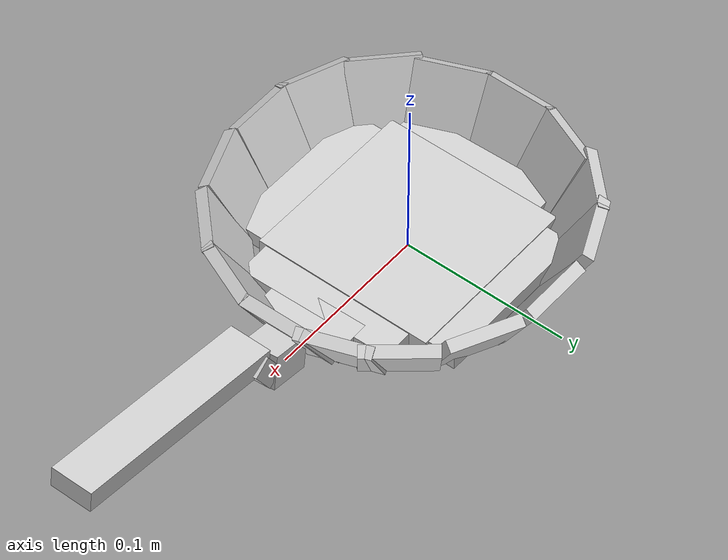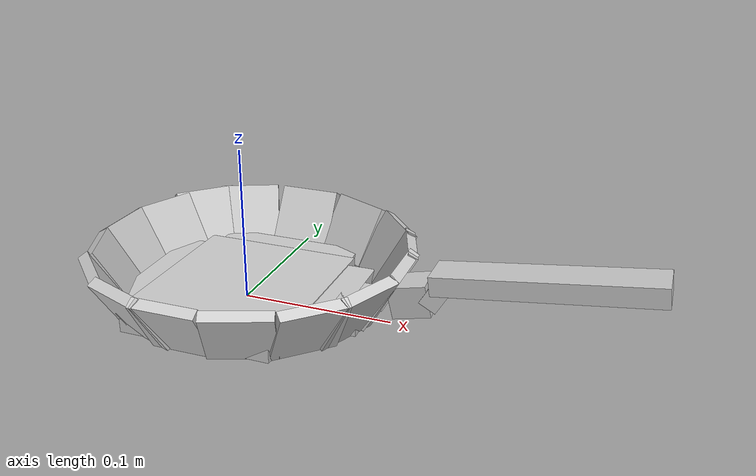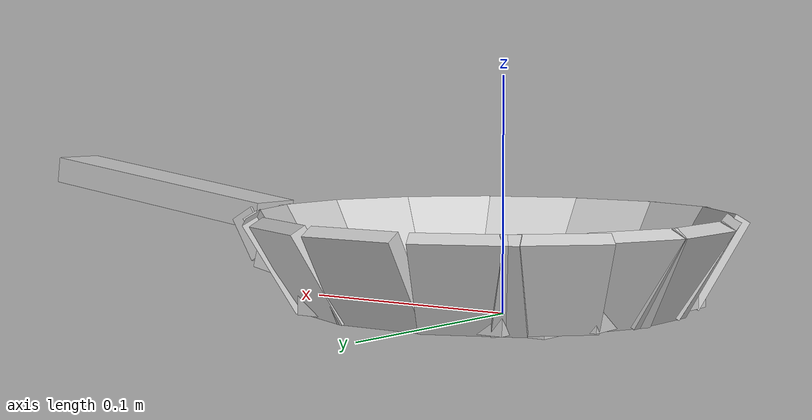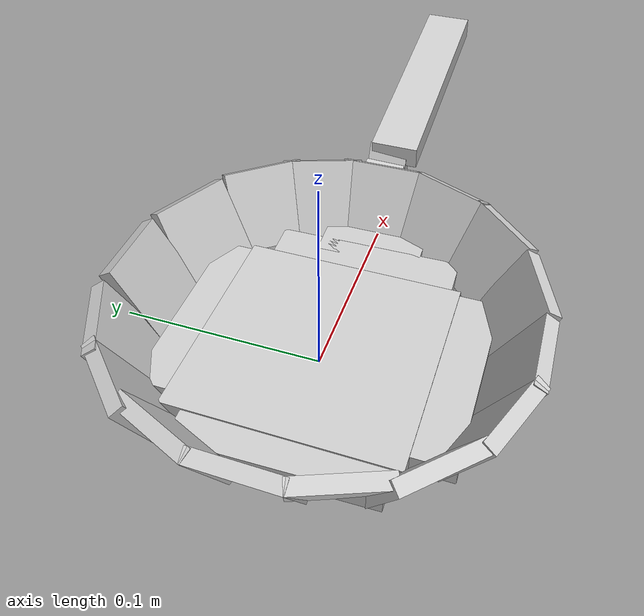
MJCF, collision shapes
<mujoco model="chefmate_8_frypan">
  <compiler angle="radian" inertiagrouprange="0 0" autolimits="true" />
  <asset>
    <texture file="../assets/stable_scanned_objects/chefmate_8_frypan/texture.png" name="tex-chefmate_8_frypan" type="2d" />
    <material name="chefmate_8_frypan" reflectance="0.5" texrepeat="1 1" texture="tex-chefmate_8_frypan" texuniform="false" />
    <mesh file="../assets/stable_scanned_objects/chefmate_8_frypan/visual/chefmate_8_frypan_vis.msh" name="chefmate_8_frypan_vis" scale="1.0 1.0 1.0" />
  </asset>
  <worldbody>
    <body name="object">
      <geom solimp="0.998 0.998 0.001" solref="0.001 1" density="100" friction="0.95 0.3 0.1" type="mesh" mesh="chefmate_8_frypan_vis" conaffinity="0" contype="0" group="1" material="chefmate_8_frypan" />
      <geom solimp="0.998 0.998 0.001" solref="0.001 1" density="100" friction="0.95 0.3 0.1" type="box" pos="0.19260 -0.00000 0.04407" quat="0.66014 0.00000 -0.75114 0.00000" size="0.00616 0.01267 0.06647" group="0" rgba="0.8 0.8 0.8 0.3" />
      <geom solimp="0.998 0.998 0.001" solref="0.001 1" density="100" friction="0.95 0.3 0.1" type="box" pos="0.11265 0.00364 0.01992" quat="0.43989 0.57302 -0.52544 -0.44951" size="0.01044 0.01048 0.01233" group="0" rgba="0.8 0.8 0.8 0.3" />
      <geom solimp="0.998 0.998 0.001" solref="0.001 1" density="100" friction="0.95 0.3 0.1" type="box" pos="0.12947 0.00364 0.02752" quat="0.00730 0.96397 0.03353 -0.26378" size="0.00603 0.01042 0.01079" group="0" rgba="0.8 0.8 0.8 0.3" />
      <geom solimp="0.998 0.998 0.001" solref="0.001 1" density="100" friction="0.95 0.3 0.1" type="box" pos="-0.00000 -0.00000 0.00675" quat="0.50000 0.50000 -0.50000 0.50000" size="0.00595 0.05485 0.05485" group="0" rgba="0.8 0.8 0.8 0.3" />
      <geom solimp="0.998 0.998 0.001" solref="0.001 1" density="100" friction="0.95 0.3 0.1" type="box" pos="0.00479 0.08710 0.02231" quat="0.18965 0.68120 0.68120 -0.18965" size="0.00357 0.02091 0.02127" group="0" rgba="0.8 0.8 0.8 0.3" />
      <geom solimp="0.998 0.998 0.001" solref="0.001 1" density="100" friction="0.95 0.3 0.1" type="box" pos="0.00128 -0.08834 0.02231" quat="0.68536 0.18848 0.19080 -0.67702" size="0.00357 0.02092 0.02127" group="0" rgba="0.8 0.8 0.8 0.3" />
      <geom solimp="0.998 0.998 0.001" solref="0.001 1" density="100" friction="0.95 0.3 0.1" type="box" pos="0.09706 0.00073 0.02231" quat="0.00191 0.96334 0.00686 -0.26820" size="0.00357 0.02092 0.02127" group="0" rgba="0.8 0.8 0.8 0.3" />
      <geom solimp="0.998 0.998 0.001" solref="0.001 1" density="100" friction="0.95 0.3 0.1" type="box" pos="-0.08256 0.00049 0.02231" quat="0.26820 0.00436 0.96335 -0.00121" size="0.00357 0.02092 0.02127" group="0" rgba="0.8 0.8 0.8 0.3" />
      <geom solimp="0.998 0.998 0.001" solref="0.001 1" density="100" friction="0.95 0.3 0.1" type="box" pos="0.04453 0.07831 0.02231" quat="0.81676 -0.14223 0.22739 0.51086" size="0.00357 0.02092 0.02127" group="0" rgba="0.8 0.8 0.8 0.3" />
      <geom solimp="0.998 0.998 0.001" solref="0.001 1" density="100" friction="0.95 0.3 0.1" type="box" pos="0.07706 0.05515 0.02231" quat="0.90695 -0.09043 0.25249 0.32483" size="0.00357 0.02092 0.02127" group="0" rgba="0.8 0.8 0.8 0.3" />
      <geom solimp="0.998 0.998 0.001" solref="0.001 1" density="100" friction="0.95 0.3 0.1" type="box" pos="0.09172 0.02956 0.02231" quat="0.04670 0.94865 0.16774 -0.26411" size="0.00357 0.02092 0.02127" group="0" rgba="0.8 0.8 0.8 0.3" />
      <geom solimp="0.998 0.998 0.001" solref="0.001 1" density="100" friction="0.95 0.3 0.1" type="box" pos="0.09031 -0.03440 0.02231" quat="0.94450 0.05282 0.26295 -0.18972" size="0.00357 0.02092 0.02127" group="0" rgba="0.8 0.8 0.8 0.3" />
      <geom solimp="0.998 0.998 0.001" solref="0.001 1" density="100" friction="0.95 0.3 0.1" type="box" pos="0.07168 -0.06235 0.02231" quat="0.89071 0.10218 0.24797 -0.36703" size="0.00357 0.02092 0.02127" group="0" rgba="0.8 0.8 0.8 0.3" />
      <geom solimp="0.998 0.998 0.001" solref="0.001 1" density="100" friction="0.95 0.3 0.1" type="box" pos="0.03933 -0.08225 0.02231" quat="0.15111 -0.79591 0.54276 0.22158" size="0.00357 0.02092 0.02127" group="0" rgba="0.8 0.8 0.8 0.3" />
      <geom solimp="0.998 0.998 0.001" solref="0.001 1" density="100" friction="0.95 0.3 0.1" type="box" pos="-0.03091 -0.08268 0.02231" quat="0.22073 -0.54723 0.79284 0.15235" size="0.00357 0.02092 0.02127" group="0" rgba="0.8 0.8 0.8 0.3" />
      <geom solimp="0.998 0.998 0.001" solref="0.001 1" density="100" friction="0.95 0.3 0.1" type="box" pos="-0.05941 -0.06345 0.02231" quat="0.37697 0.24681 0.10494 -0.88654" size="0.00357 0.02092 0.02127" group="0" rgba="0.8 0.8 0.8 0.3" />
      <geom solimp="0.998 0.998 0.001" solref="0.001 1" density="100" friction="0.95 0.3 0.1" type="box" pos="-0.03681 0.07896 0.02231" quat="0.22596 0.51893 0.81165 -0.14447" size="0.00357 0.02092 0.02127" group="0" rgba="0.8 0.8 0.8 0.3" />
      <geom solimp="0.998 0.998 0.001" solref="0.001 1" density="100" friction="0.95 0.3 0.1" type="box" pos="-0.06133 0.06115 0.02231" quat="0.10141 0.89184 -0.36427 0.24829" size="0.00357 0.02092 0.02127" group="0" rgba="0.8 0.8 0.8 0.3" />
      <geom solimp="0.998 0.998 0.001" solref="0.001 1" density="100" friction="0.95 0.3 0.1" type="box" pos="-0.07542 0.03448 0.02231" quat="0.26265 0.19492 0.94344 -0.05427" size="0.00357 0.02092 0.02127" group="0" rgba="0.8 0.8 0.8 0.3" />
      <geom solimp="0.998 0.998 0.001" solref="0.001 1" density="100" friction="0.95 0.3 0.1" type="box" pos="-0.07582 -0.03394 0.02231" quat="0.26303 -0.18840 0.94476 0.05245" size="0.00357 0.02092 0.02127" group="0" rgba="0.8 0.8 0.8 0.3" />
      <geom solimp="0.998 0.998 0.001" solref="0.001 1" density="100" friction="0.95 0.3 0.1" type="box" pos="0.00296 0.05814 0.00748" quat="0.70711 0.00000 0.70711 0.00000" size="0.00446 0.01331 0.04964" group="0" rgba="0.8 0.8 0.8 0.3" />
      <geom solimp="0.998 0.998 0.001" solref="0.001 1" density="100" friction="0.95 0.3 0.1" type="box" pos="0.00296 -0.06159 0.00748" quat="0.70711 0.00000 0.70711 0.00000" size="0.00446 0.01331 0.04964" group="0" rgba="0.8 0.8 0.8 0.3" />
      <geom solimp="0.998 0.998 0.001" solref="0.001 1" density="100" friction="0.95 0.3 0.1" type="box" pos="0.07603 -0.00290 0.00748" quat="0.50546 0.49448 0.50546 -0.49448" size="0.00446 0.01098 0.02648" group="0" rgba="0.8 0.8 0.8 0.3" />
      <geom solimp="0.998 0.998 0.001" solref="0.001 1" density="100" friction="0.95 0.3 0.1" type="box" pos="-0.05647 -0.00290 0.00748" quat="0.50546 0.49448 0.50546 -0.49448" size="0.00446 0.01331 0.04681" group="0" rgba="0.8 0.8 0.8 0.3" />
      <geom solimp="0.998 0.998 0.001" solref="0.001 1" density="100" friction="0.95 0.3 0.1" type="box" pos="0.06368 -0.00290 0.00748" quat="0.50546 0.49448 0.50546 -0.49448" size="0.00446 0.01098 0.04714" group="0" rgba="0.8 0.8 0.8 0.3" />
    </body>
  </worldbody>
</mujoco>
